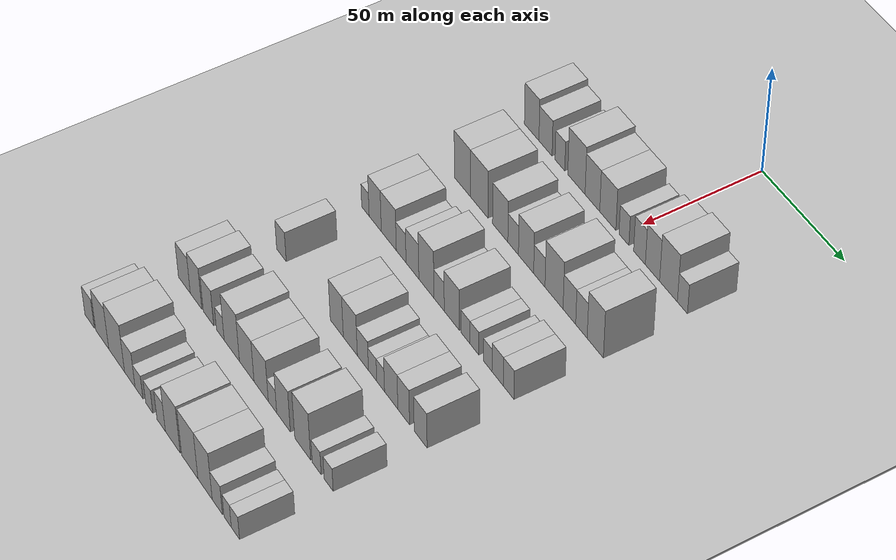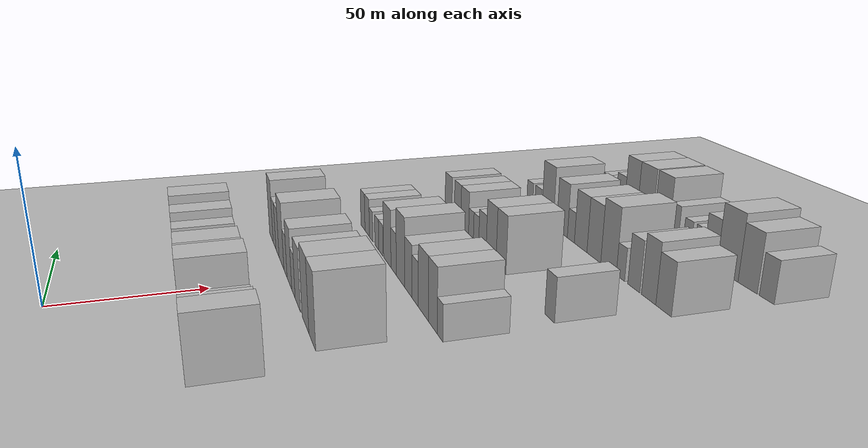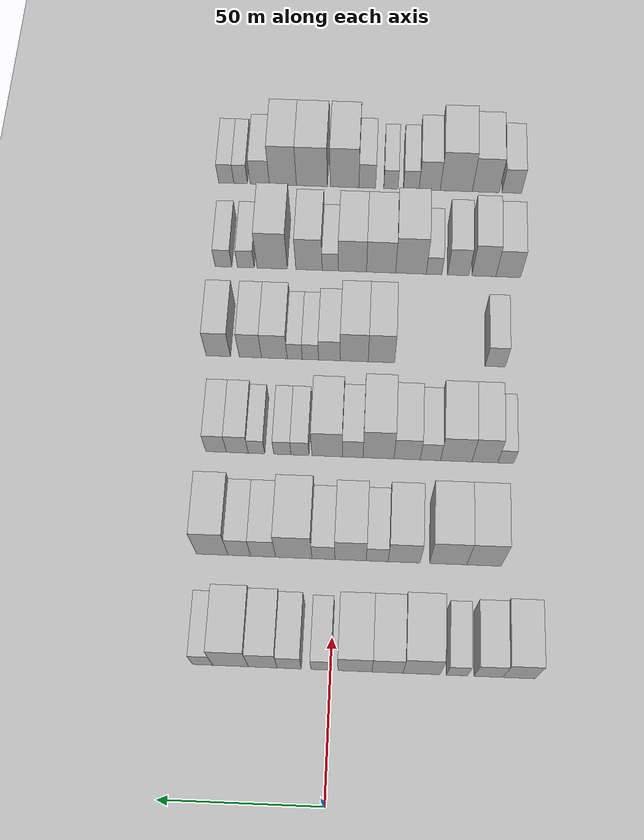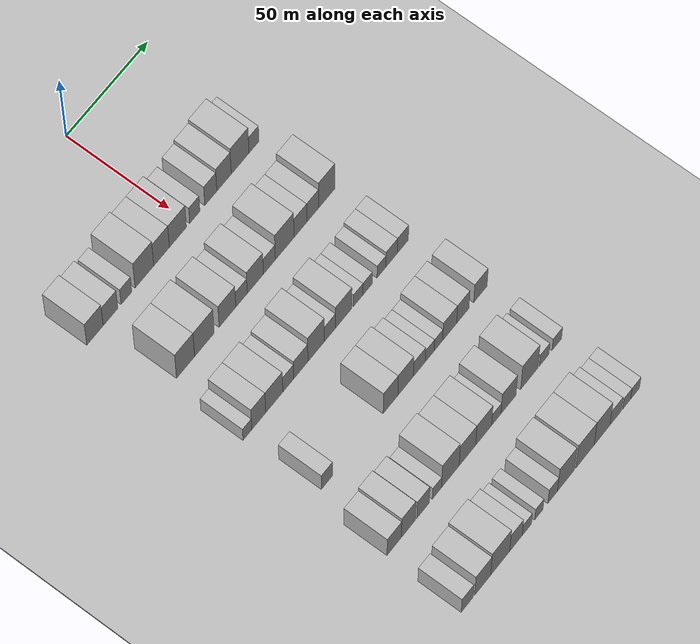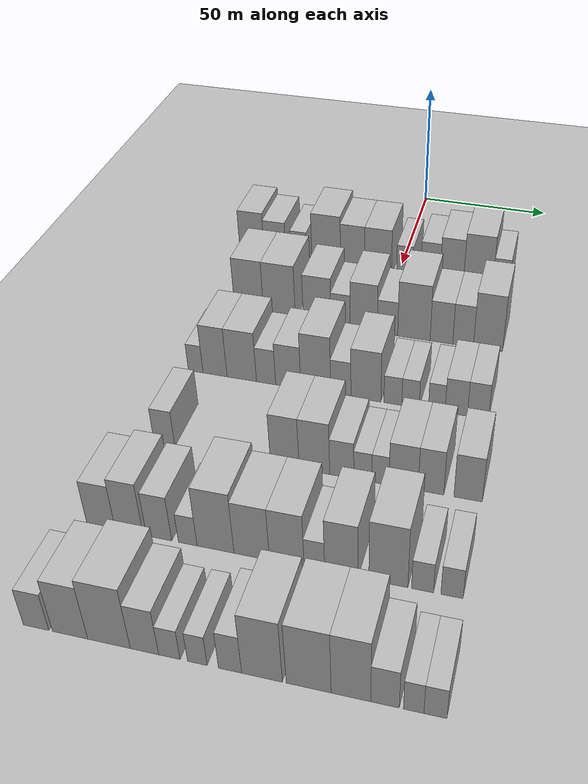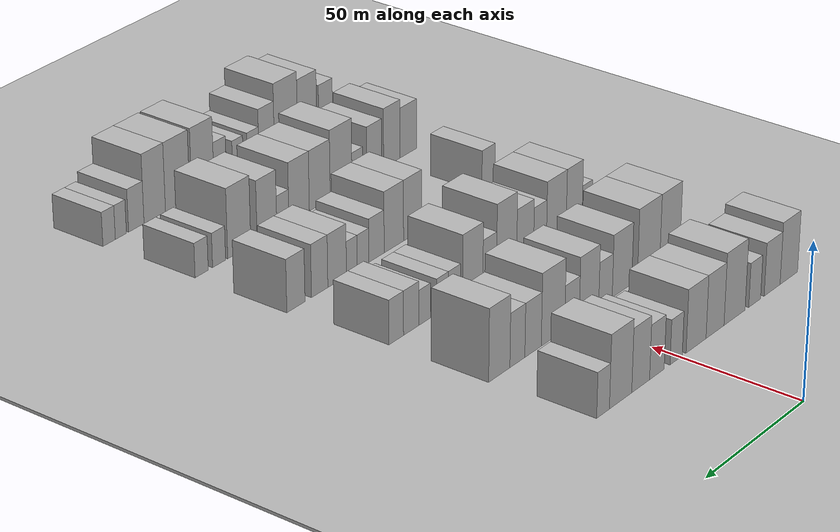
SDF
<sdf version="1.6">
 <world name="default">
  <include><name>ground_plane_1</name><uri>model://HANNAS_ground_plane</uri></include>
  <include>
   <name>ground_plane_2</name>
   <uri>model://HANNAS_ground_plane</uri>
   <pose>100 0 0  0 0 0</pose>
  </include>
  <model name="building_58">
   <static>1</static>
   <pose>50.0000 -57.8223 0 0.000000 0.000000 0.000000</pose>
   <link name="link">
    <pose>0 0 10.50 0 0 0</pose>
    <collision name="collision"><geometry><box><size>20.0000 9.8731 21.0000</size></box></geometry></collision>
    <visual name="visual">
     <cast_shadows>0</cast_shadows>
     <geometry><box><size>20.0000 9.8731 21.0000</size></box></geometry>
     <material>
      <script>
       <uri>model://HANNAS_wall/materials/scripts</uri>
       <uri>model://HANNAS_wall/materials/textures</uri>
       <name>vrc/HANNAS_wall</name>
      </script>
     </material>
    </visual>
   </link>
  </model>
  <model name="building_59">
   <static>1</static>
   <pose>50.0000 -48.4648 0 0.000000 0.000000 0.000000</pose>
   <link name="link">
    <pose>0 0 9.00 0 0 0</pose>
    <collision name="collision"><geometry><box><size>20.0000 8.8419 18.0000</size></box></geometry></collision>
    <visual name="visual">
     <cast_shadows>0</cast_shadows>
     <geometry><box><size>20.0000 8.8419 18.0000</size></box></geometry>
     <material>
      <script>
       <uri>model://HANNAS_wall/materials/scripts</uri>
       <uri>model://HANNAS_wall/materials/textures</uri>
       <name>vrc/HANNAS_wall</name>
      </script>
     </material>
    </visual>
   </link>
  </model>
  <model name="building_60">
   <static>1</static>
   <pose>50.0000 -38.8000 0 0.000000 0.000000 0.000000</pose>
   <link name="link">
    <pose>0 0 7.50 0 0 0</pose>
    <collision name="collision"><geometry><box><size>20.0000 6.4876 15.0000</size></box></geometry></collision>
    <visual name="visual">
     <cast_shadows>0</cast_shadows>
     <geometry><box><size>20.0000 6.4876 15.0000</size></box></geometry>
     <material>
      <script>
       <uri>model://HANNAS_wall/materials/scripts</uri>
       <uri>model://HANNAS_wall/materials/textures</uri>
       <name>vrc/HANNAS_wall</name>
      </script>
     </material>
    </visual>
   </link>
  </model>
  <model name="building_61">
   <static>1</static>
   <pose>50.0000 -27.8651 0 0.000000 0.000000 0.000000</pose>
   <link name="link">
    <pose>0 0 12.00 0 0 0</pose>
    <collision name="collision"><geometry><box><size>20.0000 11.3823 24.0000</size></box></geometry></collision>
    <visual name="visual">
     <cast_shadows>0</cast_shadows>
     <geometry><box><size>20.0000 11.3823 24.0000</size></box></geometry>
     <material>
      <script>
       <uri>model://HANNAS_wall/materials/scripts</uri>
       <uri>model://HANNAS_wall/materials/textures</uri>
       <name>vrc/HANNAS_wall</name>
      </script>
     </material>
    </visual>
   </link>
  </model>
  <model name="building_62">
   <static>1</static>
   <pose>50.0000 -17.3948 0 0.000000 0.000000 0.000000</pose>
   <link name="link">
    <pose>0 0 10.50 0 0 0</pose>
    <collision name="collision"><geometry><box><size>20.0000 9.5584 21.0000</size></box></geometry></collision>
    <visual name="visual">
     <cast_shadows>0</cast_shadows>
     <geometry><box><size>20.0000 9.5584 21.0000</size></box></geometry>
     <material>
      <script>
       <uri>model://HANNAS_wall/materials/scripts</uri>
       <uri>model://HANNAS_wall/materials/textures</uri>
       <name>vrc/HANNAS_wall</name>
      </script>
     </material>
    </visual>
   </link>
  </model>
  <model name="building_63">
   <static>1</static>
   <pose>50.0000 -7.4001 0 0.000000 0.000000 0.000000</pose>
   <link name="link">
    <pose>0 0 10.50 0 0 0</pose>
    <collision name="collision"><geometry><box><size>20.0000 10.4309 21.0000</size></box></geometry></collision>
    <visual name="visual">
     <cast_shadows>0</cast_shadows>
     <geometry><box><size>20.0000 10.4309 21.0000</size></box></geometry>
     <material>
      <script>
       <uri>model://HANNAS_wall/materials/scripts</uri>
       <uri>model://HANNAS_wall/materials/textures</uri>
       <name>vrc/HANNAS_wall</name>
      </script>
     </material>
    </visual>
   </link>
  </model>
  <model name="building_64">
   <static>1</static>
   <pose>50.0000 2.9660 0 0.000000 0.000000 0.000000</pose>
   <link name="link">
    <pose>0 0 7.50 0 0 0</pose>
    <collision name="collision"><geometry><box><size>20.0000 6.3011 15.0000</size></box></geometry></collision>
    <visual name="visual">
     <cast_shadows>0</cast_shadows>
     <geometry><box><size>20.0000 6.3011 15.0000</size></box></geometry>
     <material>
      <script>
       <uri>model://HANNAS_wall/materials/scripts</uri>
       <uri>model://HANNAS_wall/materials/textures</uri>
       <name>vrc/HANNAS_wall</name>
      </script>
     </material>
    </visual>
   </link>
  </model>
  <model name="building_65">
   <static>1</static>
   <pose>50.0000 12.8174 0 0.000000 0.000000 0.000000</pose>
   <link name="link">
    <pose>0 0 9.00 0 0 0</pose>
    <collision name="collision"><geometry><box><size>20.0000 7.4017 18.0000</size></box></geometry></collision>
    <visual name="visual">
     <cast_shadows>0</cast_shadows>
     <geometry><box><size>20.0000 7.4017 18.0000</size></box></geometry>
     <material>
      <script>
       <uri>model://HANNAS_wall/materials/scripts</uri>
       <uri>model://HANNAS_wall/materials/textures</uri>
       <name>vrc/HANNAS_wall</name>
      </script>
     </material>
    </visual>
   </link>
  </model>
  <model name="building_66">
   <static>1</static>
   <pose>50.0000 20.9880 0 0.000000 0.000000 0.000000</pose>
   <link name="link">
    <pose>0 0 10.50 0 0 0</pose>
    <collision name="collision"><geometry><box><size>20.0000 8.9395 21.0000</size></box></geometry></collision>
    <visual name="visual">
     <cast_shadows>0</cast_shadows>
     <geometry><box><size>20.0000 8.9395 21.0000</size></box></geometry>
     <material>
      <script>
       <uri>model://HANNAS_wall/materials/scripts</uri>
       <uri>model://HANNAS_wall/materials/textures</uri>
       <name>vrc/HANNAS_wall</name>
      </script>
     </material>
    </visual>
   </link>
  </model>
  <model name="building_67">
   <static>1</static>
   <pose>50.0000 30.9618 0 0.000000 0.000000 0.000000</pose>
   <link name="link">
    <pose>0 0 12.00 0 0 0</pose>
    <collision name="collision"><geometry><box><size>20.0000 11.0082 24.0000</size></box></geometry></collision>
    <visual name="visual">
     <cast_shadows>0</cast_shadows>
     <geometry><box><size>20.0000 11.0082 24.0000</size></box></geometry>
     <material>
      <script>
       <uri>model://HANNAS_wall/materials/scripts</uri>
       <uri>model://HANNAS_wall/materials/textures</uri>
       <name>vrc/HANNAS_wall</name>
      </script>
     </material>
    </visual>
   </link>
  </model>
  <model name="building_68">
   <static>1</static>
   <pose>50.0000 39.5713 0 0.000000 0.000000 0.000000</pose>
   <link name="link">
    <pose>0 0 7.50 0 0 0</pose>
    <collision name="collision"><geometry><box><size>20.0000 6.2107 15.0000</size></box></geometry></collision>
    <visual name="visual">
     <cast_shadows>0</cast_shadows>
     <geometry><box><size>20.0000 6.2107 15.0000</size></box></geometry>
     <material>
      <script>
       <uri>model://HANNAS_wall/materials/scripts</uri>
       <uri>model://HANNAS_wall/materials/textures</uri>
       <name>vrc/HANNAS_wall</name>
      </script>
     </material>
    </visual>
   </link>
  </model>
  <model name="building_185">
   <static>1</static>
   <pose>85.0000 -47.3190 0 0.000000 0.000000 0.000000</pose>
   <link name="link">
    <pose>0 0 12.00 0 0 0</pose>
    <collision name="collision"><geometry><box><size>20.0000 11.0102 24.0000</size></box></geometry></collision>
    <visual name="visual">
     <cast_shadows>0</cast_shadows>
     <geometry><box><size>20.0000 11.0102 24.0000</size></box></geometry>
     <material>
      <script>
       <uri>model://HANNAS_wall/materials/scripts</uri>
       <uri>model://HANNAS_wall/materials/textures</uri>
       <name>vrc/HANNAS_wall</name>
      </script>
     </material>
    </visual>
   </link>
  </model>
  <model name="building_186">
   <static>1</static>
   <pose>85.0000 -35.8545 0 0.000000 0.000000 0.000000</pose>
   <link name="link">
    <pose>0 0 12.00 0 0 0</pose>
    <collision name="collision"><geometry><box><size>20.0000 11.9187 24.0000</size></box></geometry></collision>
    <visual name="visual">
     <cast_shadows>0</cast_shadows>
     <geometry><box><size>20.0000 11.9187 24.0000</size></box></geometry>
     <material>
      <script>
       <uri>model://HANNAS_wall/materials/scripts</uri>
       <uri>model://HANNAS_wall/materials/textures</uri>
       <name>vrc/HANNAS_wall</name>
      </script>
     </material>
    </visual>
   </link>
  </model>
  <model name="building_187">
   <static>1</static>
   <pose>85.0000 -21.7799 0 0.000000 0.000000 0.000000</pose>
   <link name="link">
    <pose>0 0 10.50 0 0 0</pose>
    <collision name="collision"><geometry><box><size>20.0000 10.2305 21.0000</size></box></geometry></collision>
    <visual name="visual">
     <cast_shadows>0</cast_shadows>
     <geometry><box><size>20.0000 10.2305 21.0000</size></box></geometry>
     <material>
      <script>
       <uri>model://HANNAS_wall/materials/scripts</uri>
       <uri>model://HANNAS_wall/materials/textures</uri>
       <name>vrc/HANNAS_wall</name>
      </script>
     </material>
    </visual>
   </link>
  </model>
  <model name="building_188">
   <static>1</static>
   <pose>85.0000 -13.1634 0 0.000000 0.000000 0.000000</pose>
   <link name="link">
    <pose>0 0 7.50 0 0 0</pose>
    <collision name="collision"><geometry><box><size>20.0000 7.0025 15.0000</size></box></geometry></collision>
    <visual name="visual">
     <cast_shadows>0</cast_shadows>
     <geometry><box><size>20.0000 7.0025 15.0000</size></box></geometry>
     <material>
      <script>
       <uri>model://HANNAS_wall/materials/scripts</uri>
       <uri>model://HANNAS_wall/materials/textures</uri>
       <name>vrc/HANNAS_wall</name>
      </script>
     </material>
    </visual>
   </link>
  </model>
  <model name="building_189">
   <static>1</static>
   <pose>85.0000 -4.6731 0 0.000000 0.000000 0.000000</pose>
   <link name="link">
    <pose>0 0 10.50 0 0 0</pose>
    <collision name="collision"><geometry><box><size>20.0000 9.9782 21.0000</size></box></geometry></collision>
    <visual name="visual">
     <cast_shadows>0</cast_shadows>
     <geometry><box><size>20.0000 9.9782 21.0000</size></box></geometry>
     <material>
      <script>
       <uri>model://HANNAS_wall/materials/scripts</uri>
       <uri>model://HANNAS_wall/materials/textures</uri>
       <name>vrc/HANNAS_wall</name>
      </script>
     </material>
    </visual>
   </link>
  </model>
  <model name="building_190">
   <static>1</static>
   <pose>85.0000 3.9885 0 0.000000 0.000000 0.000000</pose>
   <link name="link">
    <pose>0 0 7.50 0 0 0</pose>
    <collision name="collision"><geometry><box><size>20.0000 7.3450 15.0000</size></box></geometry></collision>
    <visual name="visual">
     <cast_shadows>0</cast_shadows>
     <geometry><box><size>20.0000 7.3450 15.0000</size></box></geometry>
     <material>
      <script>
       <uri>model://HANNAS_wall/materials/scripts</uri>
       <uri>model://HANNAS_wall/materials/textures</uri>
       <name>vrc/HANNAS_wall</name>
      </script>
     </material>
    </visual>
   </link>
  </model>
  <model name="building_191">
   <static>1</static>
   <pose>85.0000 13.4664 0 0.000000 0.000000 0.000000</pose>
   <link name="link">
    <pose>0 0 12.00 0 0 0</pose>
    <collision name="collision"><geometry><box><size>20.0000 11.6108 24.0000</size></box></geometry></collision>
    <visual name="visual">
     <cast_shadows>0</cast_shadows>
     <geometry><box><size>20.0000 11.6108 24.0000</size></box></geometry>
     <material>
      <script>
       <uri>model://HANNAS_wall/materials/scripts</uri>
       <uri>model://HANNAS_wall/materials/textures</uri>
       <name>vrc/HANNAS_wall</name>
      </script>
     </material>
    </visual>
   </link>
  </model>
  <model name="building_192">
   <static>1</static>
   <pose>85.0000 23.2884 0 0.000000 0.000000 0.000000</pose>
   <link name="link">
    <pose>0 0 9.00 0 0 0</pose>
    <collision name="collision"><geometry><box><size>20.0000 8.0331 18.0000</size></box></geometry></collision>
    <visual name="visual">
     <cast_shadows>0</cast_shadows>
     <geometry><box><size>20.0000 8.0331 18.0000</size></box></geometry>
     <material>
      <script>
       <uri>model://HANNAS_wall/materials/scripts</uri>
       <uri>model://HANNAS_wall/materials/textures</uri>
       <name>vrc/HANNAS_wall</name>
      </script>
     </material>
    </visual>
   </link>
  </model>
  <model name="building_193">
   <static>1</static>
   <pose>85.0000 30.9265 0 0.000000 0.000000 0.000000</pose>
   <link name="link">
    <pose>0 0 9.00 0 0 0</pose>
    <collision name="collision"><geometry><box><size>20.0000 7.2430 18.0000</size></box></geometry></collision>
    <visual name="visual">
     <cast_shadows>0</cast_shadows>
     <geometry><box><size>20.0000 7.2430 18.0000</size></box></geometry>
     <material>
      <script>
       <uri>model://HANNAS_wall/materials/scripts</uri>
       <uri>model://HANNAS_wall/materials/textures</uri>
       <name>vrc/HANNAS_wall</name>
      </script>
     </material>
    </visual>
   </link>
  </model>
  <model name="building_194">
   <static>1</static>
   <pose>85.0000 39.6207 0 0.000000 0.000000 0.000000</pose>
   <link name="link">
    <pose>0 0 12.00 0 0 0</pose>
    <collision name="collision"><geometry><box><size>20.0000 10.1454 24.0000</size></box></geometry></collision>
    <visual name="visual">
     <cast_shadows>0</cast_shadows>
     <geometry><box><size>20.0000 10.1454 24.0000</size></box></geometry>
     <material>
      <script>
       <uri>model://HANNAS_wall/materials/scripts</uri>
       <uri>model://HANNAS_wall/materials/textures</uri>
       <name>vrc/HANNAS_wall</name>
      </script>
     </material>
    </visual>
   </link>
  </model>
  <model name="building_315">
   <static>1</static>
   <pose>120.0000 -54.6253 0 0.000000 0.000000 0.000000</pose>
   <link name="link">
    <pose>0 0 6.00 0 0 0</pose>
    <collision name="collision"><geometry><box><size>20.0000 5.2578 12.0000</size></box></geometry></collision>
    <visual name="visual">
     <cast_shadows>0</cast_shadows>
     <geometry><box><size>20.0000 5.2578 12.0000</size></box></geometry>
     <material>
      <script>
       <uri>model://HANNAS_wall/materials/scripts</uri>
       <uri>model://HANNAS_wall/materials/textures</uri>
       <name>vrc/HANNAS_wall</name>
      </script>
     </material>
    </visual>
   </link>
  </model>
  <model name="building_316">
   <static>1</static>
   <pose>120.0000 -47.7243 0 0.000000 0.000000 0.000000</pose>
   <link name="link">
    <pose>0 0 10.50 0 0 0</pose>
    <collision name="collision"><geometry><box><size>20.0000 8.5443 21.0000</size></box></geometry></collision>
    <visual name="visual">
     <cast_shadows>0</cast_shadows>
     <geometry><box><size>20.0000 8.5443 21.0000</size></box></geometry>
     <material>
      <script>
       <uri>model://HANNAS_wall/materials/scripts</uri>
       <uri>model://HANNAS_wall/materials/textures</uri>
       <name>vrc/HANNAS_wall</name>
      </script>
     </material>
    </visual>
   </link>
  </model>
  <model name="building_317">
   <static>1</static>
   <pose>120.0000 -38.2611 0 0.000000 0.000000 0.000000</pose>
   <link name="link">
    <pose>0 0 10.50 0 0 0</pose>
    <collision name="collision"><geometry><box><size>20.0000 10.3820 21.0000</size></box></geometry></collision>
    <visual name="visual">
     <cast_shadows>0</cast_shadows>
     <geometry><box><size>20.0000 10.3820 21.0000</size></box></geometry>
     <material>
      <script>
       <uri>model://HANNAS_wall/materials/scripts</uri>
       <uri>model://HANNAS_wall/materials/textures</uri>
       <name>vrc/HANNAS_wall</name>
      </script>
     </material>
    </visual>
   </link>
  </model>
  <model name="building_318">
   <static>1</static>
   <pose>120.0000 -29.7262 0 0.000000 0.000000 0.000000</pose>
   <link name="link">
    <pose>0 0 7.50 0 0 0</pose>
    <collision name="collision"><geometry><box><size>20.0000 6.6878 15.0000</size></box></geometry></collision>
    <visual name="visual">
     <cast_shadows>0</cast_shadows>
     <geometry><box><size>20.0000 6.6878 15.0000</size></box></geometry>
     <material>
      <script>
       <uri>model://HANNAS_wall/materials/scripts</uri>
       <uri>model://HANNAS_wall/materials/textures</uri>
       <name>vrc/HANNAS_wall</name>
      </script>
     </material>
    </visual>
   </link>
  </model>
  <model name="building_319">
   <static>1</static>
   <pose>120.0000 -22.0167 0 0.000000 0.000000 0.000000</pose>
   <link name="link">
    <pose>0 0 9.00 0 0 0</pose>
    <collision name="collision"><geometry><box><size>20.0000 8.7312 18.0000</size></box></geometry></collision>
    <visual name="visual">
     <cast_shadows>0</cast_shadows>
     <geometry><box><size>20.0000 8.7312 18.0000</size></box></geometry>
     <material>
      <script>
       <uri>model://HANNAS_wall/materials/scripts</uri>
       <uri>model://HANNAS_wall/materials/textures</uri>
       <name>vrc/HANNAS_wall</name>
      </script>
     </material>
    </visual>
   </link>
  </model>
  <model name="building_320">
   <static>1</static>
   <pose>120.0000 -12.5451 0 0.000000 0.000000 0.000000</pose>
   <link name="link">
    <pose>0 0 12.00 0 0 0</pose>
    <collision name="collision"><geometry><box><size>20.0000 10.2120 24.0000</size></box></geometry></collision>
    <visual name="visual">
     <cast_shadows>0</cast_shadows>
     <geometry><box><size>20.0000 10.2120 24.0000</size></box></geometry>
     <material>
      <script>
       <uri>model://HANNAS_wall/materials/scripts</uri>
       <uri>model://HANNAS_wall/materials/textures</uri>
       <name>vrc/HANNAS_wall</name>
      </script>
     </material>
    </visual>
   </link>
  </model>
  <model name="building_321">
   <static>1</static>
   <pose>120.0000 -4.0125 0 0.000000 0.000000 0.000000</pose>
   <link name="link">
    <pose>0 0 7.50 0 0 0</pose>
    <collision name="collision"><geometry><box><size>20.0000 6.8531 15.0000</size></box></geometry></collision>
    <visual name="visual">
     <cast_shadows>0</cast_shadows>
     <geometry><box><size>20.0000 6.8531 15.0000</size></box></geometry>
     <material>
      <script>
       <uri>model://HANNAS_wall/materials/scripts</uri>
       <uri>model://HANNAS_wall/materials/textures</uri>
       <name>vrc/HANNAS_wall</name>
      </script>
     </material>
    </visual>
   </link>
  </model>
  <model name="building_322">
   <static>1</static>
   <pose>120.0000 4.4505 0 0.000000 0.000000 0.000000</pose>
   <link name="link">
    <pose>0 0 10.50 0 0 0</pose>
    <collision name="collision"><geometry><box><size>20.0000 10.0729 21.0000</size></box></geometry></collision>
    <visual name="visual">
     <cast_shadows>0</cast_shadows>
     <geometry><box><size>20.0000 10.0729 21.0000</size></box></geometry>
     <material>
      <script>
       <uri>model://HANNAS_wall/materials/scripts</uri>
       <uri>model://HANNAS_wall/materials/textures</uri>
       <name>vrc/HANNAS_wall</name>
      </script>
     </material>
    </visual>
   </link>
  </model>
  <model name="building_323">
   <static>1</static>
   <pose>120.0000 13.4584 0 0.000000 0.000000 0.000000</pose>
   <link name="link">
    <pose>0 0 6.00 0 0 0</pose>
    <collision name="collision"><geometry><box><size>20.0000 5.9429 12.0000</size></box></geometry></collision>
    <visual name="visual">
     <cast_shadows>0</cast_shadows>
     <geometry><box><size>20.0000 5.9429 12.0000</size></box></geometry>
     <material>
      <script>
       <uri>model://HANNAS_wall/materials/scripts</uri>
       <uri>model://HANNAS_wall/materials/textures</uri>
       <name>vrc/HANNAS_wall</name>
      </script>
     </material>
    </visual>
   </link>
  </model>
  <model name="building_324">
   <static>1</static>
   <pose>120.0000 19.2961 0 0.000000 0.000000 0.000000</pose>
   <link name="link">
    <pose>0 0 6.00 0 0 0</pose>
    <collision name="collision"><geometry><box><size>20.0000 5.7326 12.0000</size></box></geometry></collision>
    <visual name="visual">
     <cast_shadows>0</cast_shadows>
     <geometry><box><size>20.0000 5.7326 12.0000</size></box></geometry>
     <material>
      <script>
       <uri>model://HANNAS_wall/materials/scripts</uri>
       <uri>model://HANNAS_wall/materials/textures</uri>
       <name>vrc/HANNAS_wall</name>
      </script>
     </material>
    </visual>
   </link>
  </model>
  <model name="building_325">
   <static>1</static>
   <pose>120.0000 27.8982 0 0.000000 0.000000 0.000000</pose>
   <link name="link">
    <pose>0 0 6.00 0 0 0</pose>
    <collision name="collision"><geometry><box><size>20.0000 5.4716 12.0000</size></box></geometry></collision>
    <visual name="visual">
     <cast_shadows>0</cast_shadows>
     <geometry><box><size>20.0000 5.4716 12.0000</size></box></geometry>
     <material>
      <script>
       <uri>model://HANNAS_wall/materials/scripts</uri>
       <uri>model://HANNAS_wall/materials/textures</uri>
       <name>vrc/HANNAS_wall</name>
      </script>
     </material>
    </visual>
   </link>
  </model>
  <model name="building_326">
   <static>1</static>
   <pose>120.0000 34.2618 0 0.000000 0.000000 0.000000</pose>
   <link name="link">
    <pose>0 0 7.50 0 0 0</pose>
    <collision name="collision"><geometry><box><size>20.0000 7.2556 15.0000</size></box></geometry></collision>
    <visual name="visual">
     <cast_shadows>0</cast_shadows>
     <geometry><box><size>20.0000 7.2556 15.0000</size></box></geometry>
     <material>
      <script>
       <uri>model://HANNAS_wall/materials/scripts</uri>
       <uri>model://HANNAS_wall/materials/textures</uri>
       <name>vrc/HANNAS_wall</name>
      </script>
     </material>
    </visual>
   </link>
  </model>
  <model name="building_327">
   <static>1</static>
   <pose>120.0000 41.2995 0 0.000000 0.000000 0.000000</pose>
   <link name="link">
    <pose>0 0 7.50 0 0 0</pose>
    <collision name="collision"><geometry><box><size>20.0000 6.8199 15.0000</size></box></geometry></collision>
    <visual name="visual">
     <cast_shadows>0</cast_shadows>
     <geometry><box><size>20.0000 6.8199 15.0000</size></box></geometry>
     <material>
      <script>
       <uri>model://HANNAS_wall/materials/scripts</uri>
       <uri>model://HANNAS_wall/materials/textures</uri>
       <name>vrc/HANNAS_wall</name>
      </script>
     </material>
    </visual>
   </link>
  </model>
  <model name="building_452">
   <static>1</static>
   <pose>155.0000 -51.5004 0 0.000000 0.000000 0.000000</pose>
   <link name="link">
    <pose>0 0 7.50 0 0 0</pose>
    <collision name="collision"><geometry><box><size>20.0000 6.8563 15.0000</size></box></geometry></collision>
    <visual name="visual">
     <cast_shadows>0</cast_shadows>
     <geometry><box><size>20.0000 6.8563 15.0000</size></box></geometry>
     <material>
      <script>
       <uri>model://HANNAS_wall/materials/scripts</uri>
       <uri>model://HANNAS_wall/materials/textures</uri>
       <name>vrc/HANNAS_wall</name>
      </script>
     </material>
    </visual>
   </link>
  </model>
  <model name="building_453">
   <static>1</static>
   <pose>155.0000 -12.5304 0 0.000000 0.000000 0.000000</pose>
   <link name="link">
    <pose>0 0 10.50 0 0 0</pose>
    <collision name="collision"><geometry><box><size>20.0000 9.0279 21.0000</size></box></geometry></collision>
    <visual name="visual">
     <cast_shadows>0</cast_shadows>
     <geometry><box><size>20.0000 9.0279 21.0000</size></box></geometry>
     <material>
      <script>
       <uri>model://HANNAS_wall/materials/scripts</uri>
       <uri>model://HANNAS_wall/materials/textures</uri>
       <name>vrc/HANNAS_wall</name>
      </script>
     </material>
    </visual>
   </link>
  </model>
  <model name="building_454">
   <static>1</static>
   <pose>155.0000 -3.2305 0 0.000000 0.000000 0.000000</pose>
   <link name="link">
    <pose>0 0 10.50 0 0 0</pose>
    <collision name="collision"><geometry><box><size>20.0000 9.5719 21.0000</size></box></geometry></collision>
    <visual name="visual">
     <cast_shadows>0</cast_shadows>
     <geometry><box><size>20.0000 9.5719 21.0000</size></box></geometry>
     <material>
      <script>
       <uri>model://HANNAS_wall/materials/scripts</uri>
       <uri>model://HANNAS_wall/materials/textures</uri>
       <name>vrc/HANNAS_wall</name>
      </script>
     </material>
    </visual>
   </link>
  </model>
  <model name="building_455">
   <static>1</static>
   <pose>155.0000 5.2880 0 0.000000 0.000000 0.000000</pose>
   <link name="link">
    <pose>0 0 7.50 0 0 0</pose>
    <collision name="collision"><geometry><box><size>20.0000 7.4651 15.0000</size></box></geometry></collision>
    <visual name="visual">
     <cast_shadows>0</cast_shadows>
     <geometry><box><size>20.0000 7.4651 15.0000</size></box></geometry>
     <material>
      <script>
       <uri>model://HANNAS_wall/materials/scripts</uri>
       <uri>model://HANNAS_wall/materials/textures</uri>
       <name>vrc/HANNAS_wall</name>
      </script>
     </material>
    </visual>
   </link>
  </model>
  <model name="building_456">
   <static>1</static>
   <pose>155.0000 11.8206 0 0.000000 0.000000 0.000000</pose>
   <link name="link">
    <pose>0 0 6.00 0 0 0</pose>
    <collision name="collision"><geometry><box><size>20.0000 5.6002 12.0000</size></box></geometry></collision>
    <visual name="visual">
     <cast_shadows>0</cast_shadows>
     <geometry><box><size>20.0000 5.6002 12.0000</size></box></geometry>
     <material>
      <script>
       <uri>model://HANNAS_wall/materials/scripts</uri>
       <uri>model://HANNAS_wall/materials/textures</uri>
       <name>vrc/HANNAS_wall</name>
      </script>
     </material>
    </visual>
   </link>
  </model>
  <model name="building_457">
   <static>1</static>
   <pose>155.0000 17.2159 0 0.000000 0.000000 0.000000</pose>
   <link name="link">
    <pose>0 0 6.00 0 0 0</pose>
    <collision name="collision"><geometry><box><size>20.0000 5.1903 12.0000</size></box></geometry></collision>
    <visual name="visual">
     <cast_shadows>0</cast_shadows>
     <geometry><box><size>20.0000 5.1903 12.0000</size></box></geometry>
     <material>
      <script>
       <uri>model://HANNAS_wall/materials/scripts</uri>
       <uri>model://HANNAS_wall/materials/textures</uri>
       <name>vrc/HANNAS_wall</name>
      </script>
     </material>
    </visual>
   </link>
  </model>
  <model name="building_458">
   <static>1</static>
   <pose>155.0000 24.2256 0 0.000000 0.000000 0.000000</pose>
   <link name="link">
    <pose>0 0 9.00 0 0 0</pose>
    <collision name="collision"><geometry><box><size>20.0000 8.8290 18.0000</size></box></geometry></collision>
    <visual name="visual">
     <cast_shadows>0</cast_shadows>
     <geometry><box><size>20.0000 8.8290 18.0000</size></box></geometry>
     <material>
      <script>
       <uri>model://HANNAS_wall/materials/scripts</uri>
       <uri>model://HANNAS_wall/materials/textures</uri>
       <name>vrc/HANNAS_wall</name>
      </script>
     </material>
    </visual>
   </link>
  </model>
  <model name="building_459">
   <static>1</static>
   <pose>155.0000 32.4759 0 0.000000 0.000000 0.000000</pose>
   <link name="link">
    <pose>0 0 9.00 0 0 0</pose>
    <collision name="collision"><geometry><box><size>20.0000 7.6717 18.0000</size></box></geometry></collision>
    <visual name="visual">
     <cast_shadows>0</cast_shadows>
     <geometry><box><size>20.0000 7.6717 18.0000</size></box></geometry>
     <material>
      <script>
       <uri>model://HANNAS_wall/materials/scripts</uri>
       <uri>model://HANNAS_wall/materials/textures</uri>
       <name>vrc/HANNAS_wall</name>
      </script>
     </material>
    </visual>
   </link>
  </model>
  <model name="building_460">
   <static>1</static>
   <pose>155.0000 43.5043 0 0.000000 0.000000 0.000000</pose>
   <link name="link">
    <pose>0 0 9.00 0 0 0</pose>
    <collision name="collision"><geometry><box><size>20.0000 8.3851 18.0000</size></box></geometry></collision>
    <visual name="visual">
     <cast_shadows>0</cast_shadows>
     <geometry><box><size>20.0000 8.3851 18.0000</size></box></geometry>
     <material>
      <script>
       <uri>model://HANNAS_wall/materials/scripts</uri>
       <uri>model://HANNAS_wall/materials/textures</uri>
       <name>vrc/HANNAS_wall</name>
      </script>
     </material>
    </visual>
   </link>
  </model>
  <model name="building_565">
   <static>1</static>
   <pose>190.0000 -56.4158 0 0.000000 0.000000 0.000000</pose>
   <link name="link">
    <pose>0 0 9.00 0 0 0</pose>
    <collision name="collision"><geometry><box><size>20.0000 8.7335 18.0000</size></box></geometry></collision>
    <visual name="visual">
     <cast_shadows>0</cast_shadows>
     <geometry><box><size>20.0000 8.7335 18.0000</size></box></geometry>
     <material>
      <script>
       <uri>model://HANNAS_wall/materials/scripts</uri>
       <uri>model://HANNAS_wall/materials/textures</uri>
       <name>vrc/HANNAS_wall</name>
      </script>
     </material>
    </visual>
   </link>
  </model>
  <model name="building_566">
   <static>1</static>
   <pose>190.0000 -47.7925 0 0.000000 0.000000 0.000000</pose>
   <link name="link">
    <pose>0 0 10.50 0 0 0</pose>
    <collision name="collision"><geometry><box><size>20.0000 8.5131 21.0000</size></box></geometry></collision>
    <visual name="visual">
     <cast_shadows>0</cast_shadows>
     <geometry><box><size>20.0000 8.5131 21.0000</size></box></geometry>
     <material>
      <script>
       <uri>model://HANNAS_wall/materials/scripts</uri>
       <uri>model://HANNAS_wall/materials/textures</uri>
       <name>vrc/HANNAS_wall</name>
      </script>
     </material>
    </visual>
   </link>
  </model>
  <model name="building_567">
   <static>1</static>
   <pose>190.0000 -38.7458 0 0.000000 0.000000 0.000000</pose>
   <link name="link">
    <pose>0 0 9.00 0 0 0</pose>
    <collision name="collision"><geometry><box><size>20.0000 7.5804 18.0000</size></box></geometry></collision>
    <visual name="visual">
     <cast_shadows>0</cast_shadows>
     <geometry><box><size>20.0000 7.5804 18.0000</size></box></geometry>
     <material>
      <script>
       <uri>model://HANNAS_wall/materials/scripts</uri>
       <uri>model://HANNAS_wall/materials/textures</uri>
       <name>vrc/HANNAS_wall</name>
      </script>
     </material>
    </visual>
   </link>
  </model>
  <model name="building_568">
   <static>1</static>
   <pose>190.0000 -30.1814 0 0.000000 0.000000 0.000000</pose>
   <link name="link">
    <pose>0 0 6.00 0 0 0</pose>
    <collision name="collision"><geometry><box><size>20.0000 5.5484 12.0000</size></box></geometry></collision>
    <visual name="visual">
     <cast_shadows>0</cast_shadows>
     <geometry><box><size>20.0000 5.5484 12.0000</size></box></geometry>
     <material>
      <script>
       <uri>model://HANNAS_wall/materials/scripts</uri>
       <uri>model://HANNAS_wall/materials/textures</uri>
       <name>vrc/HANNAS_wall</name>
      </script>
     </material>
    </visual>
   </link>
  </model>
  <model name="building_569">
   <static>1</static>
   <pose>190.0000 -21.9614 0 0.000000 0.000000 0.000000</pose>
   <link name="link">
    <pose>0 0 12.00 0 0 0</pose>
    <collision name="collision"><geometry><box><size>20.0000 10.8915 24.0000</size></box></geometry></collision>
    <visual name="visual">
     <cast_shadows>0</cast_shadows>
     <geometry><box><size>20.0000 10.8915 24.0000</size></box></geometry>
     <material>
      <script>
       <uri>model://HANNAS_wall/materials/scripts</uri>
       <uri>model://HANNAS_wall/materials/textures</uri>
       <name>vrc/HANNAS_wall</name>
      </script>
     </material>
    </visual>
   </link>
  </model>
  <model name="building_570">
   <static>1</static>
   <pose>190.0000 -11.3691 0 0.000000 0.000000 0.000000</pose>
   <link name="link">
    <pose>0 0 10.50 0 0 0</pose>
    <collision name="collision"><geometry><box><size>20.0000 10.2930 21.0000</size></box></geometry></collision>
    <visual name="visual">
     <cast_shadows>0</cast_shadows>
     <geometry><box><size>20.0000 10.2930 21.0000</size></box></geometry>
     <material>
      <script>
       <uri>model://HANNAS_wall/materials/scripts</uri>
       <uri>model://HANNAS_wall/materials/textures</uri>
       <name>vrc/HANNAS_wall</name>
      </script>
     </material>
    </visual>
   </link>
  </model>
  <model name="building_571">
   <static>1</static>
   <pose>190.0000 -1.2571 0 0.000000 0.000000 0.000000</pose>
   <link name="link">
    <pose>0 0 10.50 0 0 0</pose>
    <collision name="collision"><geometry><box><size>20.0000 9.9311 21.0000</size></box></geometry></collision>
    <visual name="visual">
     <cast_shadows>0</cast_shadows>
     <geometry><box><size>20.0000 9.9311 21.0000</size></box></geometry>
     <material>
      <script>
       <uri>model://HANNAS_wall/materials/scripts</uri>
       <uri>model://HANNAS_wall/materials/textures</uri>
       <name>vrc/HANNAS_wall</name>
      </script>
     </material>
    </visual>
   </link>
  </model>
  <model name="building_572">
   <static>1</static>
   <pose>190.0000 6.6084 0 0.000000 0.000000 0.000000</pose>
   <link name="link">
    <pose>0 0 6.00 0 0 0</pose>
    <collision name="collision"><geometry><box><size>20.0000 5.7998 12.0000</size></box></geometry></collision>
    <visual name="visual">
     <cast_shadows>0</cast_shadows>
     <geometry><box><size>20.0000 5.7998 12.0000</size></box></geometry>
     <material>
      <script>
       <uri>model://HANNAS_wall/materials/scripts</uri>
       <uri>model://HANNAS_wall/materials/textures</uri>
       <name>vrc/HANNAS_wall</name>
      </script>
     </material>
    </visual>
   </link>
  </model>
  <model name="building_573">
   <static>1</static>
   <pose>190.0000 14.1912 0 0.000000 0.000000 0.000000</pose>
   <link name="link">
    <pose>0 0 10.50 0 0 0</pose>
    <collision name="collision"><geometry><box><size>20.0000 9.3659 21.0000</size></box></geometry></collision>
    <visual name="visual">
     <cast_shadows>0</cast_shadows>
     <geometry><box><size>20.0000 9.3659 21.0000</size></box></geometry>
     <material>
      <script>
       <uri>model://HANNAS_wall/materials/scripts</uri>
       <uri>model://HANNAS_wall/materials/textures</uri>
       <name>vrc/HANNAS_wall</name>
      </script>
     </material>
    </visual>
   </link>
  </model>
  <model name="building_574">
   <static>1</static>
   <pose>190.0000 27.2517 0 0.000000 0.000000 0.000000</pose>
   <link name="link">
    <pose>0 0 12.00 0 0 0</pose>
    <collision name="collision"><geometry><box><size>20.0000 10.7550 24.0000</size></box></geometry></collision>
    <visual name="visual">
     <cast_shadows>0</cast_shadows>
     <geometry><box><size>20.0000 10.7550 24.0000</size></box></geometry>
     <material>
      <script>
       <uri>model://HANNAS_wall/materials/scripts</uri>
       <uri>model://HANNAS_wall/materials/textures</uri>
       <name>vrc/HANNAS_wall</name>
      </script>
     </material>
    </visual>
   </link>
  </model>
  <model name="building_575">
   <static>1</static>
   <pose>190.0000 36.6179 0 0.000000 0.000000 0.000000</pose>
   <link name="link">
    <pose>0 0 6.00 0 0 0</pose>
    <collision name="collision"><geometry><box><size>20.0000 5.9776 12.0000</size></box></geometry></collision>
    <visual name="visual">
     <cast_shadows>0</cast_shadows>
     <geometry><box><size>20.0000 5.9776 12.0000</size></box></geometry>
     <material>
      <script>
       <uri>model://HANNAS_wall/materials/scripts</uri>
       <uri>model://HANNAS_wall/materials/textures</uri>
       <name>vrc/HANNAS_wall</name>
      </script>
     </material>
    </visual>
   </link>
  </model>
  <model name="building_576">
   <static>1</static>
   <pose>190.0000 44.5902 0 0.000000 0.000000 0.000000</pose>
   <link name="link">
    <pose>0 0 6.00 0 0 0</pose>
    <collision name="collision"><geometry><box><size>20.0000 5.9670 12.0000</size></box></geometry></collision>
    <visual name="visual">
     <cast_shadows>0</cast_shadows>
     <geometry><box><size>20.0000 5.9670 12.0000</size></box></geometry>
     <material>
      <script>
       <uri>model://HANNAS_wall/materials/scripts</uri>
       <uri>model://HANNAS_wall/materials/textures</uri>
       <name>vrc/HANNAS_wall</name>
      </script>
     </material>
    </visual>
   </link>
  </model>
  <model name="building_689">
   <static>1</static>
   <pose>225.0000 -58.1845 0 0.000000 0.000000 0.000000</pose>
   <link name="link">
    <pose>0 0 7.50 0 0 0</pose>
    <collision name="collision"><geometry><box><size>20.0000 7.1804 15.0000</size></box></geometry></collision>
    <visual name="visual">
     <cast_shadows>0</cast_shadows>
     <geometry><box><size>20.0000 7.1804 15.0000</size></box></geometry>
     <material>
      <script>
       <uri>model://HANNAS_wall/materials/scripts</uri>
       <uri>model://HANNAS_wall/materials/textures</uri>
       <name>vrc/HANNAS_wall</name>
      </script>
     </material>
    </visual>
   </link>
  </model>
  <model name="building_690">
   <static>1</static>
   <pose>225.0000 -48.6741 0 0.000000 0.000000 0.000000</pose>
   <link name="link">
    <pose>0 0 10.50 0 0 0</pose>
    <collision name="collision"><geometry><box><size>20.0000 9.8403 21.0000</size></box></geometry></collision>
    <visual name="visual">
     <cast_shadows>0</cast_shadows>
     <geometry><box><size>20.0000 9.8403 21.0000</size></box></geometry>
     <material>
      <script>
       <uri>model://HANNAS_wall/materials/scripts</uri>
       <uri>model://HANNAS_wall/materials/textures</uri>
       <name>vrc/HANNAS_wall</name>
      </script>
     </material>
    </visual>
   </link>
  </model>
  <model name="building_691">
   <static>1</static>
   <pose>225.0000 -37.8894 0 0.000000 0.000000 0.000000</pose>
   <link name="link">
    <pose>0 0 12.00 0 0 0</pose>
    <collision name="collision"><geometry><box><size>20.0000 11.7292 24.0000</size></box></geometry></collision>
    <visual name="visual">
     <cast_shadows>0</cast_shadows>
     <geometry><box><size>20.0000 11.7292 24.0000</size></box></geometry>
     <material>
      <script>
       <uri>model://HANNAS_wall/materials/scripts</uri>
       <uri>model://HANNAS_wall/materials/textures</uri>
       <name>vrc/HANNAS_wall</name>
      </script>
     </material>
    </visual>
   </link>
  </model>
  <model name="building_692">
   <static>1</static>
   <pose>225.0000 -28.1656 0 0.000000 0.000000 0.000000</pose>
   <link name="link">
    <pose>0 0 9.00 0 0 0</pose>
    <collision name="collision"><geometry><box><size>20.0000 7.7183 18.0000</size></box></geometry></collision>
    <visual name="visual">
     <cast_shadows>0</cast_shadows>
     <geometry><box><size>20.0000 7.7183 18.0000</size></box></geometry>
     <material>
      <script>
       <uri>model://HANNAS_wall/materials/scripts</uri>
       <uri>model://HANNAS_wall/materials/textures</uri>
       <name>vrc/HANNAS_wall</name>
      </script>
     </material>
    </visual>
   </link>
  </model>
  <model name="building_693">
   <static>1</static>
   <pose>225.0000 -21.4347 0 0.000000 0.000000 0.000000</pose>
   <link name="link">
    <pose>0 0 6.00 0 0 0</pose>
    <collision name="collision"><geometry><box><size>20.0000 5.7436 12.0000</size></box></geometry></collision>
    <visual name="visual">
     <cast_shadows>0</cast_shadows>
     <geometry><box><size>20.0000 5.7436 12.0000</size></box></geometry>
     <material>
      <script>
       <uri>model://HANNAS_wall/materials/scripts</uri>
       <uri>model://HANNAS_wall/materials/textures</uri>
       <name>vrc/HANNAS_wall</name>
      </script>
     </material>
    </visual>
   </link>
  </model>
  <model name="building_694">
   <static>1</static>
   <pose>225.0000 -13.9704 0 0.000000 0.000000 0.000000</pose>
   <link name="link">
    <pose>0 0 6.00 0 0 0</pose>
    <collision name="collision"><geometry><box><size>20.0000 5.1849 12.0000</size></box></geometry></collision>
    <visual name="visual">
     <cast_shadows>0</cast_shadows>
     <geometry><box><size>20.0000 5.1849 12.0000</size></box></geometry>
     <material>
      <script>
       <uri>model://HANNAS_wall/materials/scripts</uri>
       <uri>model://HANNAS_wall/materials/textures</uri>
       <name>vrc/HANNAS_wall</name>
      </script>
     </material>
    </visual>
   </link>
  </model>
  <model name="building_695">
   <static>1</static>
   <pose>225.0000 -5.3429 0 0.000000 0.000000 0.000000</pose>
   <link name="link">
    <pose>0 0 7.50 0 0 0</pose>
    <collision name="collision"><geometry><box><size>20.0000 6.0702 15.0000</size></box></geometry></collision>
    <visual name="visual">
     <cast_shadows>0</cast_shadows>
     <geometry><box><size>20.0000 6.0702 15.0000</size></box></geometry>
     <material>
      <script>
       <uri>model://HANNAS_wall/materials/scripts</uri>
       <uri>model://HANNAS_wall/materials/textures</uri>
       <name>vrc/HANNAS_wall</name>
      </script>
     </material>
    </visual>
   </link>
  </model>
  <model name="building_696">
   <static>1</static>
   <pose>225.0000 2.9707 0 0.000000 0.000000 0.000000</pose>
   <link name="link">
    <pose>0 0 12.00 0 0 0</pose>
    <collision name="collision"><geometry><box><size>20.0000 10.5571 24.0000</size></box></geometry></collision>
    <visual name="visual">
     <cast_shadows>0</cast_shadows>
     <geometry><box><size>20.0000 10.5571 24.0000</size></box></geometry>
     <material>
      <script>
       <uri>model://HANNAS_wall/materials/scripts</uri>
       <uri>model://HANNAS_wall/materials/textures</uri>
       <name>vrc/HANNAS_wall</name>
      </script>
     </material>
    </visual>
   </link>
  </model>
  <model name="building_697">
   <static>1</static>
   <pose>225.0000 14.9530 0 0.000000 0.000000 0.000000</pose>
   <link name="link">
    <pose>0 0 12.00 0 0 0</pose>
    <collision name="collision"><geometry><box><size>20.0000 11.4075 24.0000</size></box></geometry></collision>
    <visual name="visual">
     <cast_shadows>0</cast_shadows>
     <geometry><box><size>20.0000 11.4075 24.0000</size></box></geometry>
     <material>
      <script>
       <uri>model://HANNAS_wall/materials/scripts</uri>
       <uri>model://HANNAS_wall/materials/textures</uri>
       <name>vrc/HANNAS_wall</name>
      </script>
     </material>
    </visual>
   </link>
  </model>
  <model name="building_698">
   <static>1</static>
   <pose>225.0000 25.6199 0 0.000000 0.000000 0.000000</pose>
   <link name="link">
    <pose>0 0 12.00 0 0 0</pose>
    <collision name="collision"><geometry><box><size>20.0000 9.9264 24.0000</size></box></geometry></collision>
    <visual name="visual">
     <cast_shadows>0</cast_shadows>
     <geometry><box><size>20.0000 9.9264 24.0000</size></box></geometry>
     <material>
      <script>
       <uri>model://HANNAS_wall/materials/scripts</uri>
       <uri>model://HANNAS_wall/materials/textures</uri>
       <name>vrc/HANNAS_wall</name>
      </script>
     </material>
    </visual>
   </link>
  </model>
  <model name="building_699">
   <static>1</static>
   <pose>225.0000 34.1095 0 0.000000 0.000000 0.000000</pose>
   <link name="link">
    <pose>0 0 7.50 0 0 0</pose>
    <collision name="collision"><geometry><box><size>20.0000 7.0527 15.0000</size></box></geometry></collision>
    <visual name="visual">
     <cast_shadows>0</cast_shadows>
     <geometry><box><size>20.0000 7.0527 15.0000</size></box></geometry>
     <material>
      <script>
       <uri>model://HANNAS_wall/materials/scripts</uri>
       <uri>model://HANNAS_wall/materials/textures</uri>
       <name>vrc/HANNAS_wall</name>
      </script>
     </material>
    </visual>
   </link>
  </model>
  <model name="building_700">
   <static>1</static>
   <pose>225.0000 41.1401 0 0.000000 0.000000 0.000000</pose>
   <link name="link">
    <pose>0 0 6.00 0 0 0</pose>
    <collision name="collision"><geometry><box><size>20.0000 5.0084 12.0000</size></box></geometry></collision>
    <visual name="visual">
     <cast_shadows>0</cast_shadows>
     <geometry><box><size>20.0000 5.0084 12.0000</size></box></geometry>
     <material>
      <script>
       <uri>model://HANNAS_wall/materials/scripts</uri>
       <uri>model://HANNAS_wall/materials/textures</uri>
       <name>vrc/HANNAS_wall</name>
      </script>
     </material>
    </visual>
   </link>
  </model>
  <model name="building_701">
   <static>1</static>
   <pose>225.0000 46.4378 0 0.000000 0.000000 0.000000</pose>
   <link name="link">
    <pose>0 0 6.00 0 0 0</pose>
    <collision name="collision"><geometry><box><size>20.0000 5.5871 12.0000</size></box></geometry></collision>
    <visual name="visual">
     <cast_shadows>0</cast_shadows>
     <geometry><box><size>20.0000 5.5871 12.0000</size></box></geometry>
     <material>
      <script>
       <uri>model://HANNAS_wall/materials/scripts</uri>
       <uri>model://HANNAS_wall/materials/textures</uri>
       <name>vrc/HANNAS_wall</name>
      </script>
     </material>
    </visual>
   </link>
  </model>
 </world>
</sdf>
